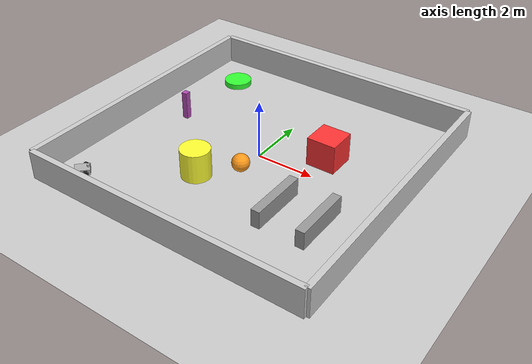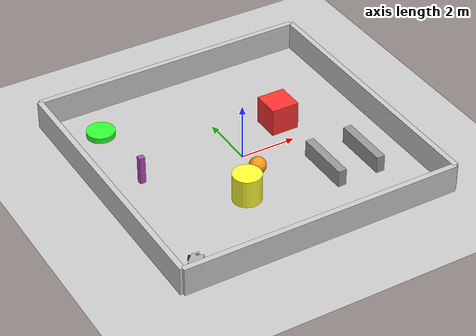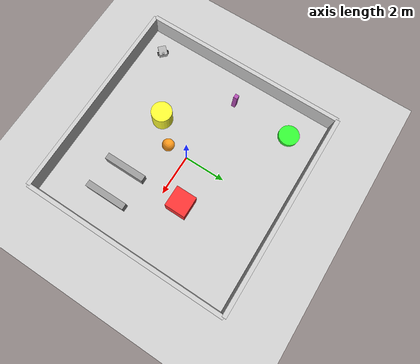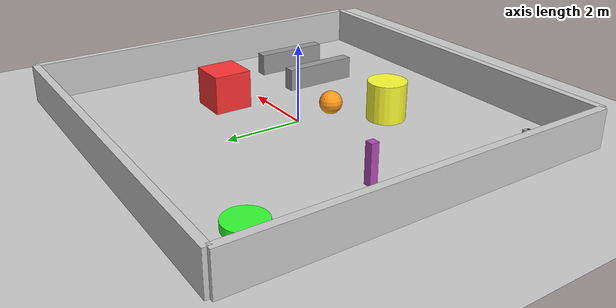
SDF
<?xml version="1.0"?>
<sdf version="1.6">
  <world name="robot_navigation_world">

    <!-- Physics settings for realistic simulation -->
    <physics type="ode">
      <max_step_size>0.001</max_step_size>
      <real_time_factor>1</real_time_factor>
      <real_time_update_rate>1000</real_time_update_rate>
    </physics>

    <!-- Lighting -->
    <include>
      <uri>model://sun</uri>
    </include>

    <!-- Ground plane -->
    <include>
      <uri>model://ground_plane</uri>
    </include>

    <!-- Walls creating a bounded area -->
    <model name="wall_north">
      <pose>0 5 0.5 0 0 0</pose>
      <static>true</static>
      <link name="link">
        <collision name="collision">
          <geometry>
            <box><size>10 0.2 1</size></box>
          </geometry>
        </collision>
        <visual name="visual">
          <geometry>
            <box><size>10 0.2 1</size></box>
          </geometry>
          <material>
            <ambient>0.5 0.5 0.5 1</ambient>
            <diffuse>0.8 0.8 0.8 1</diffuse>
          </material>
        </visual>
      </link>
    </model>

    <model name="wall_south">
      <pose>0 -5 0.5 0 0 0</pose>
      <static>true</static>
      <link name="link">
        <collision name="collision">
          <geometry>
            <box><size>10 0.2 1</size></box>
          </geometry>
        </collision>
        <visual name="visual">
          <geometry>
            <box><size>10 0.2 1</size></box>
          </geometry>
          <material>
            <ambient>0.5 0.5 0.5 1</ambient>
            <diffuse>0.8 0.8 0.8 1</diffuse>
          </material>
        </visual>
      </link>
    </model>

    <model name="wall_east">
      <pose>5 0 0.5 0 0 1.5707</pose>
      <static>true</static>
      <link name="link">
        <collision name="collision">
          <geometry>
            <box><size>10 0.2 1</size></box>
          </geometry>
        </collision>
        <visual name="visual">
          <geometry>
            <box><size>10 0.2 1</size></box>
          </geometry>
          <material>
            <ambient>0.5 0.5 0.5 1</ambient>
            <diffuse>0.8 0.8 0.8 1</diffuse>
          </material>
        </visual>
      </link>
    </model>

    <model name="wall_west">
      <pose>-5 0 0.5 0 0 1.5707</pose>
      <static>true</static>
      <link name="link">
        <collision name="collision">
          <geometry>
            <box><size>10 0.2 1</size></box>
          </geometry>
        </collision>
        <visual name="visual">
          <geometry>
            <box><size>10 0.2 1</size></box>
          </geometry>
          <material>
            <ambient>0.5 0.5 0.5 1</ambient>
            <diffuse>0.8 0.8 0.8 1</diffuse>
          </material>
        </visual>
      </link>
    </model>

    <!-- Large obstacle 1 (red box) -->
    <model name="obstacle_1">
      <pose>2 1 0.5 0 0 0</pose>
      <static>true</static>
      <link name="link">
        <collision name="collision">
          <geometry>
            <box><size>1 1 1</size></box>
          </geometry>
        </collision>
        <visual name="visual">
          <geometry>
            <box><size>1 1 1</size></box>
          </geometry>
          <material>
            <ambient>0.8 0.1 0.1 1</ambient>
            <diffuse>1 0.2 0.2 1</diffuse>
          </material>
        </visual>
      </link>
    </model>

    <!-- Large obstacle 2 (blue box) -->

    <!-- Cylindrical obstacle (yellow) -->
    <model name="obstacle_3">
      <pose>-1 -2 0.5 0 0 0</pose>
      <static>true</static>
      <link name="link">
        <collision name="collision">
          <geometry>
            <cylinder><radius>0.5</radius><length>1</length></cylinder>
          </geometry>
        </collision>
        <visual name="visual">
          <geometry>
            <cylinder><radius>0.5</radius><length>1</length></cylinder>
          </geometry>
          <material>
            <ambient>0.8 0.8 0.1 1</ambient>
            <diffuse>1 1 0.2 1</diffuse>
          </material>
        </visual>
      </link>
    </model>

    <!-- Narrow passage obstacles -->
    <model name="passage_left">
      <pose>2 -2 0.3 0 0 0</pose>
      <static>true</static>
      <link name="link">
        <collision name="collision">
          <geometry>
            <box><size>0.3 2 0.6</size></box>
          </geometry>
        </collision>
        <visual name="visual">
          <geometry>
            <box><size>0.3 2 0.6</size></box>
          </geometry>
          <material>
            <ambient>0.4 0.4 0.4 1</ambient>
            <diffuse>0.6 0.6 0.6 1</diffuse>
          </material>
        </visual>
      </link>
    </model>

    <model name="passage_right">
      <pose>3.5 -2 0.3 0 0 0</pose>
      <static>true</static>
      <link name="link">
        <collision name="collision">
          <geometry>
            <box><size>0.3 2 0.6</size></box>
          </geometry>
        </collision>
        <visual name="visual">
          <geometry>
            <box><size>0.3 2 0.6</size></box>
          </geometry>
          <material>
            <ambient>0.4 0.4 0.4 1</ambient>
            <diffuse>0.6 0.6 0.6 1</diffuse>
          </material>
        </visual>
      </link>
    </model>

    <!-- Small obstacles for complexity -->

    <!-- Target zone (bright green cylinder) - Goal for robot -->
    <model name="target_zone">
      <pose>-3.5 3.5 0.1 0 0 0</pose>
      <static>true</static>
      <link name="link">
        <collision name="collision">
          <geometry>
            <cylinder><radius>0.5</radius><length>0.2</length></cylinder>
          </geometry>
        </collision>
        <visual name="visual">
          <geometry>
            <cylinder><radius>0.5</radius><length>0.2</length></cylinder>
          </geometry>
          <material>
            <ambient>0.1 1 0.1 1</ambient>
            <diffuse>0.2 1 0.2 1</diffuse>
            <emissive>0.1 0.5 0.1 1</emissive>
          </material>
        </visual>
      </link>
    </model>

    <!-- Checkpoint marker (orange sphere) -->
    <!-- Obstacle blocking goal -->

    <!-- Obstacle near goal -->

    <!-- Purple obstacle in path -->
    <model name="small_obstacle_2">
      <pose>-3.5 0.5 0.5 0 0 0</pose>
      <static>true</static>
      <link name="link">
        <collision name="collision">
          <geometry>
            <box><size>0.2 0.2 1</size></box>
          </geometry>
        </collision>
        <visual name="visual">
      <geometry>
        <box><size>0.2 0.2 1</size></box>
      </geometry>
          <material>
            <ambient>0.5 0.2 0.5 1</ambient>
            <diffuse>0.7 0.3 0.7 1</diffuse>
          </material>
        </visual>
      </link>
    </model>

    <model name="checkpoint">
      <pose>0 -1 0.3 0 0 0</pose>
      <static>true</static>
      <link name="link">
        <collision name="collision">
          <geometry>
            <sphere><radius>0.3</radius></sphere>
          </geometry>
        </collision>
        <visual name="visual">
          <geometry>
            <sphere><radius>0.3</radius></sphere>
          </geometry>
          <material>
            <ambient>1 0.5 0 1</ambient>
            <diffuse>1 0.6 0.1 1</diffuse>
          </material>
        </visual>
      </link>
    </model>

    <!-- Include the robot -->
    <include>
      <uri>model://simple_robot</uri>
      <pose>-4 -4 0 0 0 0.785</pose>
    </include>

  </world>
</sdf>

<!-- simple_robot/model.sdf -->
<sdf version="1.6">
  <model name="simple_robot">

    <!-- Robot body -->
    <link name="base_link">
      <pose>0 0 0.1 0 0 0</pose>

      <collision name="base_link_collision">
        <geometry>
          <box><size>0.5 0.4 0.2</size></box>
        </geometry>
      </collision>

      <visual name="visual">
        <geometry>
          <box><size>0.5 0.4 0.2</size></box>
        </geometry>
        <material>
          <ambient>0.3 0.3 0.3 1</ambient>
          <diffuse>0.7 0.7 0.7 1</diffuse>
        </material>
      </visual>

      <inertial>
        <mass>15</mass>
        <inertia>
          <ixx>0.147</ixx>
          <iyy>0.147</iyy>
          <izz>0.147</izz>
        </inertia>
      </inertial>

      <sensor name="bumper" type="contact">
        <contact>
          <collision>base_link_collision</collision>
        </contact>
        <always_on>1</always_on>
        <update_rate>10</update_rate>
        <plugin name="gazebo_ros_bumper" filename="libgazebo_ros_bumper.so">
          <bumperTopicName>/robot/bumper</bumperTopicName>
          <frameName>base_link</frameName>
        </plugin>
      </sensor>
    </link>

    <!-- Left wheel -->
    <link name="left_wheel">
      <pose>0.1 0.25 0.1 1.5707 0 0</pose>

      <collision name="collision">
        <geometry>
          <cylinder><radius>0.1</radius><length>0.05</length></cylinder>
        </geometry>
        <surface>
          <friction>
            <ode>
              <mu>100</mu>
              <mu2>50</mu2>
            </ode>
          </friction>
        </surface>
      </collision>

      <visual name="visual">
        <geometry>
          <cylinder><radius>0.1</radius><length>0.05</length></cylinder>
        </geometry>
        <material>
          <ambient>0.1 0.1 0.1 1</ambient>
        </material>
      </visual>

      <inertial>
        <mass>2</mass>
        <inertia>
          <ixx>0.0145</ixx>
          <iyy>0.0145</iyy>
          <izz>0.0145</izz>
        </inertia>
      </inertial>
    </link>

    <!-- Right wheel -->
    <link name="right_wheel">
      <pose>0.1 -0.25 0.1 1.5707 0 0</pose>

      <collision name="collision">
        <geometry>
          <cylinder><radius>0.1</radius><length>0.05</length></cylinder>
        </geometry>
        <surface>
          <friction>
            <ode>
              <mu>100</mu>
              <mu2>50</mu2>
            </ode>
          </friction>
        </surface>
      </collision>

      <visual name="visual">
        <geometry>
          <cylinder><radius>0.1</radius><length>0.05</length></cylinder>
        </geometry>
        <material>
          <ambient>0.1 0.1 0.1 1</ambient>
        </material>
      </visual>

      <inertial>
        <mass>2</mass>
        <inertia>
          <ixx>0.0145</ixx>
          <iyy>0.0145</iyy>
          <izz>0.0145</izz>
        </inertia>
      </inertial>
    </link>

    <!-- Caster wheel -->
    <link name="caster">
      <pose>-0.2 0 0.05 0 0 0</pose>

      <collision name="collision">
        <geometry>
          <sphere><radius>0.05</radius></sphere>
        </geometry>
        <surface>
          <friction>
            <ode>
              <mu>0</mu>
              <mu2>0</mu2>
              <slip1>1.0</slip1>
              <slip2>1.0</slip2>
            </ode>
          </friction>
        </surface>
      </collision>

      <visual name="visual">
        <geometry>
          <sphere><radius>0.05</radius></sphere>
        </geometry>
      </visual>

      <inertial>
        <mass>0.5</mass>
        <inertia>
          <ixx>0.001</ixx>
          <iyy>0.001</iyy>
          <izz>0.001</izz>
        </inertia>
      </inertial>
    </link>

    <!-- Joints -->
    <joint name="left_wheel_joint" type="revolute">
      <parent>base_link</parent>
      <child>left_wheel</child>
      <axis>
        <xyz>0 0 1</xyz>
      </axis>
    </joint>

    <joint name="right_wheel_joint" type="revolute">
      <parent>base_link</parent>
      <child>right_wheel</child>
      <axis>
        <xyz>0 0 1</xyz>
      </axis>
    </joint>

    <joint name="caster_joint" type="fixed">
      <parent>base_link</parent>
      <child>caster</child>
    </joint>

    <!-- LIDAR -->
    <link name="lidar_link">
      <pose>0.2 0 0.25 0 0 0</pose>

      <visual name="visual">
        <geometry>
          <cylinder><radius>0.05</radius><length>0.07</length></cylinder>
        </geometry>
      </visual>

      <sensor name="lidar" type="ray">
        <pose>0 0 0 0 0 0</pose>
        <ray>
          <scan>
            <horizontal>
              <samples>360</samples>
              <resolution>1</resolution>
              <min_angle>-3.14159</min_angle>
              <max_angle>3.14159</max_angle>
            </horizontal>
          </scan>
          <range>
            <min>0.1</min>
            <max>10.0</max>
            <resolution>0.01</resolution>
          </range>
        </ray>
        <always_on>1</always_on>
        <update_rate>10</update_rate>
        <visualize>false</visualize>

        <plugin name="gazebo_ros_lidar" filename="libgazebo_ros_laser.so">
          <topicName>/robot/laser/scan</topicName>
          <frameName>lidar_link</frameName>
        </plugin>
      </sensor>

      <inertial>
        <mass>0.1</mass>
        <inertia>
          <ixx>0.001</ixx>
          <iyy>0.001</iyy>
          <izz>0.001</izz>
        </inertia>
      </inertial>
    </link>

    <joint name="lidar_joint" type="fixed">
      <parent>base_link</parent>
      <child>lidar_link</child>
    </joint>

    <!-- Differential Drive Plugin -->
    <plugin name="differential_drive_controller" filename="libgazebo_ros_diff_drive.so">
      <rosDebugLevel>na</rosDebugLevel>
      <publishWheelTF>false</publishWheelTF>
      <robotNamespace>/</robotNamespace>
      <publishTf>1</publishTf>
      <publishWheelJointState>false</publishWheelJointState>
      <alwaysOn>true</alwaysOn>
      <updateRate>100.0</updateRate>
      <legacyMode>true</legacyMode>
      <leftJoint>left_wheel_joint</leftJoint>
      <rightJoint>right_wheel_joint</rightJoint>
      <wheelSeparation>0.5</wheelSeparation>
      <wheelDiameter>0.2</wheelDiameter>
      <broadcastTF>1</broadcastTF>
      <wheelTorque>20</wheelTorque>
      <wheelAcceleration>1.8</wheelAcceleration>
      <commandTopic>cmd_vel</commandTopic>
      <odometryFrame>odom</odometryFrame>
      <odometryTopic>odom</odometryTopic>
      <robotBaseFrame>base_link</robotBaseFrame>
    </plugin>

    <!-- Ground Truth Plugin -->
    <plugin name="ground_truth" filename="libgazebo_ros_p3d.so">
      <alwaysOn>true</alwaysOn>
      <updateRate>100.0</updateRate>
      <bodyName>base_link</bodyName>
      <topicName>/robot/ground_truth/state</topicName>
      <frameName>world</frameName>
      <xyzOffsets>0 0 0</xyzOffsets>
      <rpyOffsets>0 0 0</rpyOffsets>
    </plugin>

  </model>
</sdf>
